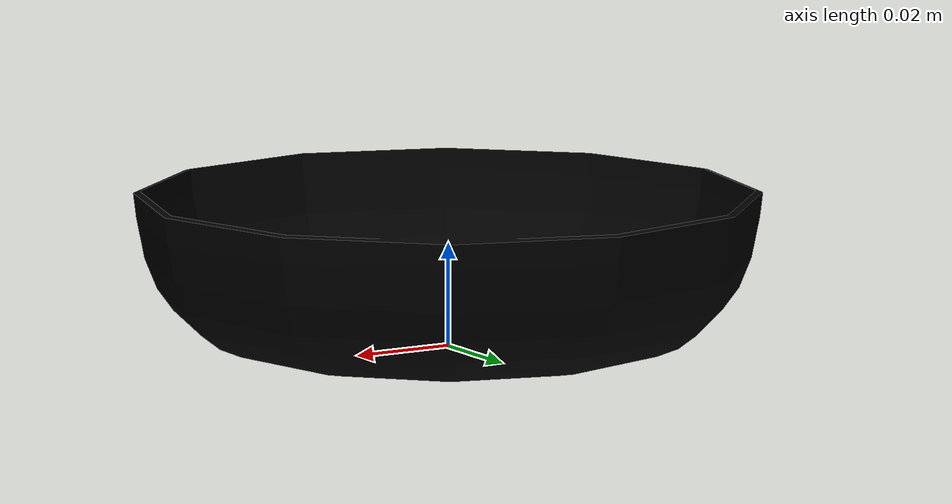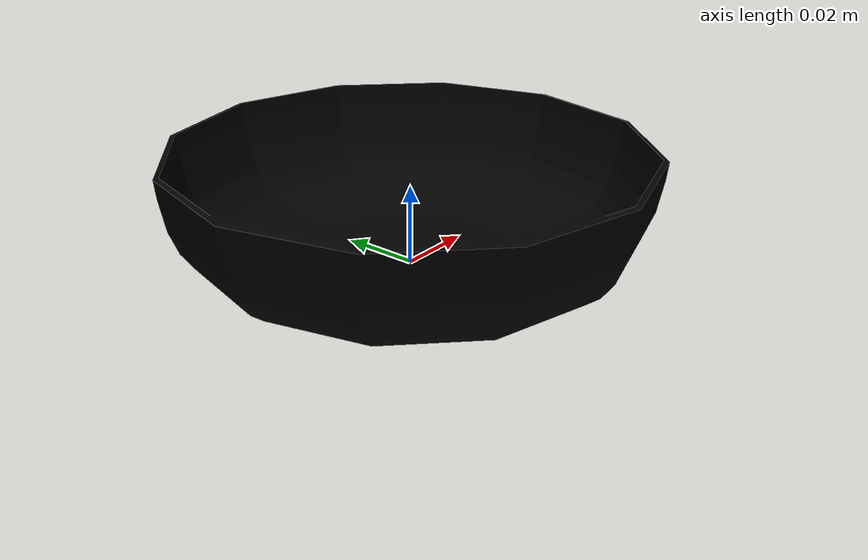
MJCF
<mujoco model="black_bowl">
  <compiler angle="radian" meshdir="assets" autolimits="true"/>

  <option cone="elliptic" impratio="10"/>

  <asset>
    <material name="black" rgba="0 0 0 1"/>
    <mesh name="black_bowl" file="bowl.obj"/>
  </asset>

  <worldbody>
    <body name="black_bowl_body">
        <geom type="mesh" mesh="black_bowl" material="black" name="black_bowl_geom" friction="1 0.3 0.1" density="50" group="1" />
        <joint type="free" name="black_bowl_joint" />
    </body>
  </worldbody>

</mujoco>
